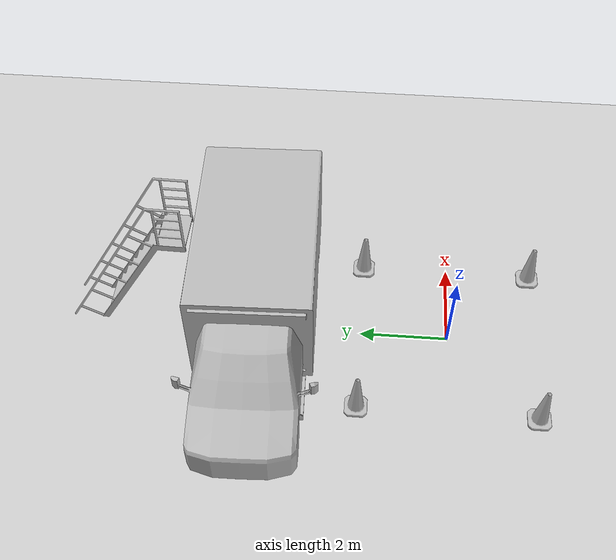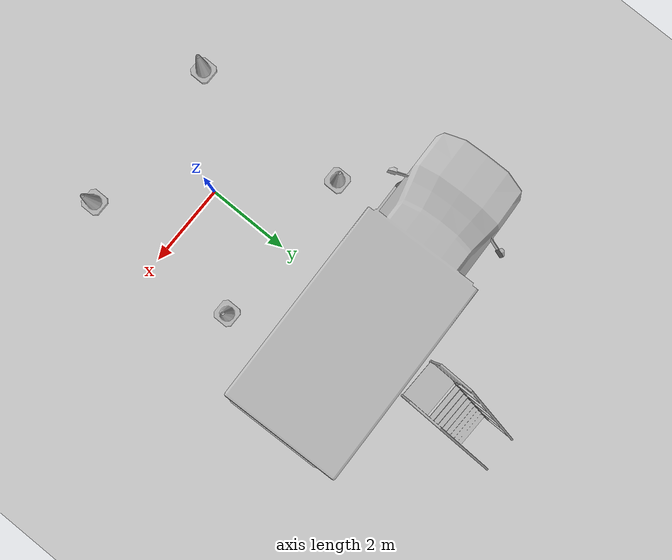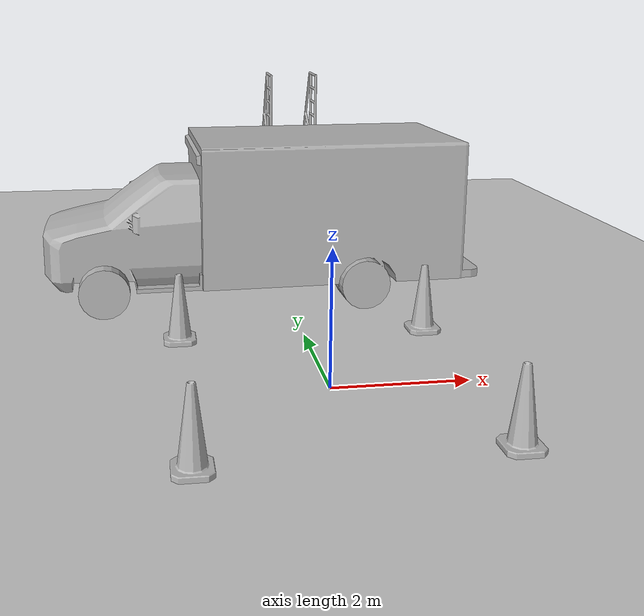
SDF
<sdf version="1.6">
 <world name="default">
  <light name="sun" type="directional">
   <pose>0 0 10 0 -0 0</pose>
   <diffuse>0.8 0.8 0.8 1</diffuse>
   <specular>0.2 0.2 0.2 1</specular>
   <attenuation>
    <range>1000</range>
    <constant>0.9</constant>
    <linear>0.01</linear>
    <quadratic>0.001</quadratic>
   </attenuation>
   <direction>-0.5 0.1 -0.9</direction>
  </light>
  <model name="ground_plane">
   <static>1</static>
   <link name="link">
    <collision name="collision">
     <geometry><plane><normal>0 0 1</normal><size>100 100</size></plane></geometry>
     <surface><friction><ode><mu>100</mu><mu2>50</mu2></ode></friction></surface>
    </collision>
    <visual name="visual">
     <cast_shadows>0</cast_shadows>
     <geometry><plane><normal>0 0 1</normal><size>100 100</size></plane></geometry>
     <material>
      <script><uri>file://media/materials/scripts/gazebo.material</uri><name>Gazebo/Grey</name></script>
     </material>
    </visual>
   </link>
  </model>
  <gravity>0 0 -9.8</gravity>
  <magnetic_field>6e-06 2.3e-05 -4.2e-05</magnetic_field>
  <atmosphere type="adiabatic"/>
  <physics name="default_physics" default="0" type="ode">
   <max_step_size>0.001</max_step_size>
   <real_time_factor>1</real_time_factor>
   <real_time_update_rate>1000</real_time_update_rate>
  </physics>
  <scene><ambient>0.4 0.4 0.4 1</ambient><background>0.7 0.7 0.7 1</background><shadows>1</shadows></scene>
  <audio><device>default</device></audio>
  <spherical_coordinates>
   <surface_model>EARTH_WGS84</surface_model>
   <latitude_deg>0</latitude_deg>
   <longitude_deg>0</longitude_deg>
   <elevation>0</elevation>
   <heading_deg>0</heading_deg>
  </spherical_coordinates>
  <model name="Construction Cone">
   <static>1</static>
   <link name="link">
    <collision name="collision">
     <geometry>
      <mesh><scale>10 10 10</scale><uri>model://construction_cone/meshes/construction_cone.dae</uri></mesh>
     </geometry>
    </collision>
    <visual name="visual">
     <geometry>
      <mesh><scale>10 10 10</scale><uri>model://construction_cone/meshes/construction_cone.dae</uri></mesh>
     </geometry>
    </visual>
    <inertial>
     <inertia><ixx>1</ixx><ixy>0</ixy><ixz>0</ixz><iyy>1</iyy><iyz>0</iyz><izz>1</izz></inertia>
     <mass>1</mass>
    </inertial>
   </link>
   <pose>1.91069 -1.95766 -0 0 -0 0</pose>
  </model>
  <model name="Construction Cone_clone">
   <static>1</static>
   <link name="link">
    <collision name="collision">
     <geometry>
      <mesh><scale>10 10 10</scale><uri>model://construction_cone/meshes/construction_cone.dae</uri></mesh>
     </geometry>
    </collision>
    <visual name="visual">
     <geometry>
      <mesh><scale>10 10 10</scale><uri>model://construction_cone/meshes/construction_cone.dae</uri></mesh>
     </geometry>
    </visual>
    <inertial>
     <inertia><ixx>1</ixx><ixy>0</ixy><ixz>0</ixz><iyy>1</iyy><iyz>0</iyz><izz>1</izz></inertia>
     <mass>1</mass>
    </inertial>
   </link>
   <pose>1.94549 1.98844 -0 0 -0 0</pose>
  </model>
  <model name="Construction Cone_clone_0">
   <static>1</static>
   <link name="link">
    <collision name="collision">
     <geometry>
      <mesh><scale>10 10 10</scale><uri>model://construction_cone/meshes/construction_cone.dae</uri></mesh>
     </geometry>
    </collision>
    <visual name="visual">
     <geometry>
      <mesh><scale>10 10 10</scale><uri>model://construction_cone/meshes/construction_cone.dae</uri></mesh>
     </geometry>
    </visual>
    <inertial>
     <inertia><ixx>1</ixx><ixy>0</ixy><ixz>0</ixz><iyy>1</iyy><iyz>0</iyz><izz>1</izz></inertia>
     <mass>1</mass>
    </inertial>
   </link>
   <pose>-1.97833 2.00827 -0 0 -1e-06 0</pose>
  </model>
  <model name="Construction Cone_clone_1">
   <static>1</static>
   <link name="link">
    <collision name="collision">
     <geometry>
      <mesh><scale>10 10 10</scale><uri>model://construction_cone/meshes/construction_cone.dae</uri></mesh>
     </geometry>
    </collision>
    <visual name="visual">
     <geometry>
      <mesh><scale>10 10 10</scale><uri>model://construction_cone/meshes/construction_cone.dae</uri></mesh>
     </geometry>
    </visual>
    <inertial>
     <inertia><ixx>1</ixx><ixy>0</ixy><ixz>0</ixz><iyy>1</iyy><iyz>0</iyz><izz>1</izz></inertia>
     <mass>1</mass>
    </inertial>
   </link>
   <pose>-2.00819 -1.98571 -0 0 -1e-06 0</pose>
  </model>
  <model name="ambulance">
   <static>1</static>
   <link name="link">
    <collision name="collision">
     <geometry>
      <mesh><scale>0.0254 0.0254 0.0254</scale><uri>model://ambulance/meshes/ambulance.obj</uri></mesh>
     </geometry>
    </collision>
    <visual name="visual">
     <geometry>
      <mesh><scale>0.0254 0.0254 0.0254</scale><uri>model://ambulance/meshes/ambulance.obj</uri></mesh>
     </geometry>
    </visual>
   </link>
   <pose>-0.369341 4.35177 0 0 0 -1.54178</pose>
  </model>
  <model name="ladder">
   <static>1</static>
   <link name="link">
    <collision name="step0">
     <pose>0 -0.96703 0.286 0 -0 0</pose>
     <geometry><box><size>0.9 0.1016 0.0381</size></box></geometry>
    </collision>
    <collision name="step1">
     <pose>0 -0.79106 0.59054 0 -0 0</pose>
     <geometry><box><size>0.9 0.1016 0.0381</size></box></geometry>
    </collision>
    <collision name="step2">
     <pose>0 -0.61509 0.89508 0 -0 0</pose>
     <geometry><box><size>0.9 0.1016 0.0381</size></box></geometry>
    </collision>
    <collision name="step3">
     <pose>0 -0.43912 1.19962 0 -0 0</pose>
     <geometry><box><size>0.9 0.1016 0.0381</size></box></geometry>
    </collision>
    <collision name="step4">
     <pose>0 -0.26315 1.50416 0 -0 0</pose>
     <geometry><box><size>0.9 0.1016 0.0381</size></box></geometry>
    </collision>
    <collision name="step5">
     <pose>0 -0.08718 1.8087 0 -0 0</pose>
     <geometry><box><size>0.9 0.1016 0.0381</size></box></geometry>
    </collision>
    <collision name="step6">
     <pose>0 0.08879 2.11324 0 -0 0</pose>
     <geometry><box><size>0.9 0.1016 0.0381</size></box></geometry>
    </collision>
    <collision name="step7">
     <pose>0 0.26476 2.41778 0 -0 0</pose>
     <geometry><box><size>0.9 0.1016 0.0381</size></box></geometry>
    </collision>
    <collision name="landing">
     <pose>0 0.73039 2.72432 0 -0 0</pose>
     <geometry><box><size>0.9 0.6096 0.0381</size></box></geometry>
    </collision>
    <collision name="left_side_wall">
     <pose>-0.43217 -0.37451 1.3386 1.0472 -0 0</pose>
     <geometry><box><size>0.0508 3.16758 0.13</size></box></geometry>
    </collision>
    <collision name="left_side_landing_wall">
     <pose>-0.43217 0.69819 2.667 0 -0 0</pose>
     <geometry><box><size>0.0508 0.67401 0.1524</size></box></geometry>
    </collision>
    <collision name="left_railing_landing_3">
     <pose>-0.433355 0.66933 3.81 1.5707 -0 0</pose>
     <geometry><cylinder><radius>0.02413</radius><length>0.73172</length></cylinder></geometry>
    </collision>
    <collision name="left_railing_landing_2">
     <pose>-0.433355 0.73166 3.5433 1.5707 -0 0</pose>
     <geometry><cylinder><radius>0.02413</radius><length>0.5588</length></cylinder></geometry>
    </collision>
    <collision name="left_railing_landing_1">
     <pose>-0.433355 0.73166 3.2766 1.5707 -0 0</pose>
     <geometry><cylinder><radius>0.02413</radius><length>0.5588</length></cylinder></geometry>
    </collision>
    <collision name="left_railing_landing_0">
     <pose>-0.433355 0.73166 3.0099 1.5707 -0 0</pose>
     <geometry><cylinder><radius>0.02413</radius><length>0.5588</length></cylinder></geometry>
    </collision>
    <collision name="left_railing_landing_upright_back">
     <pose>-0.433355 1.01088 3.2766 0 -0 0</pose>
     <geometry><cylinder><radius>0.02413</radius><length>1.0668</length></cylinder></geometry>
    </collision>
    <collision name="left_railing_landing_upright_front">
     <pose>-0.433355 0.45208 3.2766 0 -0 0</pose>
     <geometry><cylinder><radius>0.02413</radius><length>1.0668</length></cylinder></geometry>
    </collision>
    <collision name="left_railing_upright_4">
     <pose>-0.433355 0.0699 2.80986 1.03414 -0 0</pose>
     <geometry><cylinder><radius>0.02413</radius><length>0.57</length></cylinder></geometry>
    </collision>
    <collision name="left_railing_upright_3">
     <pose>-0.433355 -0.31006 2.15169 1.03414 -0 0</pose>
     <geometry><cylinder><radius>0.02413</radius><length>0.57</length></cylinder></geometry>
    </collision>
    <collision name="left_railing_upright_2">
     <pose>-0.433355 -0.6911 1.49172 1.03414 -0 0</pose>
     <geometry><cylinder><radius>0.02413</radius><length>0.57</length></cylinder></geometry>
    </collision>
    <collision name="left_railing_upright_1">
     <pose>-0.433355 -1.0732 0.82995 1.03414 -0 0</pose>
     <geometry><cylinder><radius>0.02413</radius><length>0.57</length></cylinder></geometry>
    </collision>
    <collision name="left_railing_upright_0">
     <pose>-0.433355 -1.45316 0.17179 1.03414 -0 0</pose>
     <geometry><cylinder><radius>0.02413</radius><length>0.57</length></cylinder></geometry>
    </collision>
    <collision name="left_railing_long">
     <pose>-0.433355 -0.781 1.9068 -0.523503 0 0</pose>
     <geometry><cylinder><radius>0.02413</radius><length>4.42295</length></cylinder></geometry>
    </collision>
    <collision name="right_side_wall">
     <pose>0.43217 -0.37451 1.3386 1.0472 -0 0</pose>
     <geometry><box><size>0.0508 3.16758 0.13</size></box></geometry>
    </collision>
    <collision name="right_side_landing_wall">
     <pose>0.43217 0.69819 2.667 0 -0 0</pose>
     <geometry><box><size>0.0508 0.67401 0.1524</size></box></geometry>
    </collision>
    <collision name="right_railing_landing_3">
     <pose>0.433355 0.66933 3.81 1.5707 -0 0</pose>
     <geometry><cylinder><radius>0.02413</radius><length>0.73172</length></cylinder></geometry>
    </collision>
    <collision name="right_railing_landing_2">
     <pose>0.433355 0.73166 3.5433 1.5707 -0 0</pose>
     <geometry><cylinder><radius>0.02413</radius><length>0.5588</length></cylinder></geometry>
    </collision>
    <collision name="right_railing_landing_1">
     <pose>0.433355 0.73166 3.2766 1.5707 -0 0</pose>
     <geometry><cylinder><radius>0.02413</radius><length>0.5588</length></cylinder></geometry>
    </collision>
    <collision name="right_railing_landing_0">
     <pose>0.433355 0.73166 3.0099 1.5707 -0 0</pose>
     <geometry><cylinder><radius>0.02413</radius><length>0.5588</length></cylinder></geometry>
    </collision>
    <collision name="right_railing_landing_upright_back">
     <pose>0.433355 1.01088 3.2766 0 -0 0</pose>
     <geometry><cylinder><radius>0.02413</radius><length>1.0668</length></cylinder></geometry>
    </collision>
    <collision name="right_railing_landing_upright_front">
     <pose>0.433355 0.45208 3.2766 0 -0 0</pose>
     <geometry><cylinder><radius>0.02413</radius><length>1.0668</length></cylinder></geometry>
    </collision>
    <collision name="right_railing_upright_4">
     <pose>0.433355 0.0699 2.80986 1.03414 -0 0</pose>
     <geometry><cylinder><radius>0.02413</radius><length>0.57</length></cylinder></geometry>
    </collision>
    <collision name="right_railing_upright_3">
     <pose>0.433355 -0.31006 2.15169 1.03414 -0 0</pose>
     <geometry><cylinder><radius>0.02413</radius><length>0.57</length></cylinder></geometry>
    </collision>
    <collision name="right_railing_upright_2">
     <pose>0.433355 -0.6911 1.49172 1.03414 -0 0</pose>
     <geometry><cylinder><radius>0.02413</radius><length>0.57</length></cylinder></geometry>
    </collision>
    <collision name="right_railing_upright_1">
     <pose>0.433355 -1.0732 0.82995 1.03414 -0 0</pose>
     <geometry><cylinder><radius>0.02413</radius><length>0.57</length></cylinder></geometry>
    </collision>
    <collision name="right_railing_upright_0">
     <pose>0.433355 -1.45316 0.17179 1.03414 -0 0</pose>
     <geometry><cylinder><radius>0.02413</radius><length>0.57</length></cylinder></geometry>
    </collision>
    <collision name="right_railing_long">
     <pose>0.433355 -0.781 1.9068 -0.523503 0 0</pose>
     <geometry><cylinder><radius>0.02413</radius><length>4.42295</length></cylinder></geometry>
    </collision>
    <visual name="visual">
     <geometry><mesh><uri>model://drc_practice_ladder/meshes/ladder.dae</uri></mesh></geometry>
    </visual>
   </link>
   <pose>0.468632 6.82895 0 0 -0 3.11634</pose>
  </model>
 </world>
</sdf>
